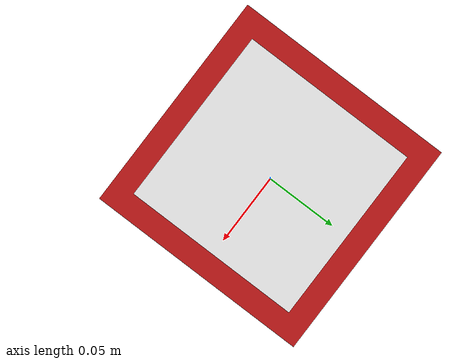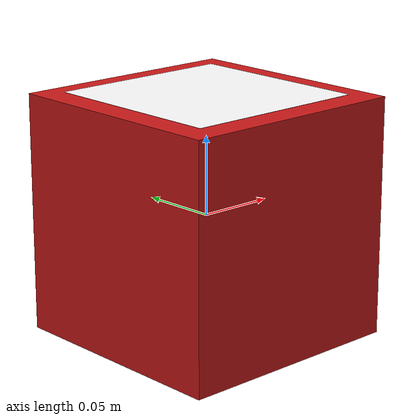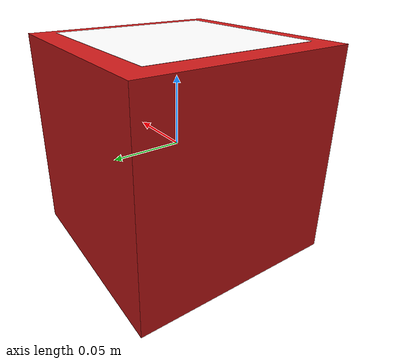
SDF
<?xml version="1.0" ?>
<sdf version="1.8">
  <model name="payload_box">
    <static>false</static>
    <link name="link">
      <inertial>
        <mass>0.5</mass>
        <inertia>
          <ixx>0.001</ixx> <iyy>0.001</iyy> <izz>0.001</izz>
        </inertia>
      </inertial>
      <collision name="collision">
        <geometry>
          <box><size>0.15 0.15 0.15</size></box>
        </geometry>
      </collision>
      <visual name="body_visual">
        <geometry>
          <box><size>0.15 0.15 0.15</size></box>
        </geometry>
        <material>
          <ambient>0.8 0.1 0.1 1</ambient>
          <diffuse>0.8 0.1 0.1 1</diffuse>
        </material>
      </visual>
      <visual name="marker_visual">
        <pose>0 0 0.076 0 0 0</pose>
        <geometry>
          <plane><normal>0 0 1</normal><size>0.12 0.12</size></plane>
        </geometry>
        <material>
          <diffuse>1 1 1 1</diffuse>
          <pbr>
            <metal>
              <albedo_map>/home/khush/nested_aruco.png</albedo_map>
              <metalness>0.0</metalness>
              <roughness>0.8</roughness>
            </metal>
          </pbr>
        </material>
      </visual>
    </link>
  </model>
</sdf>
